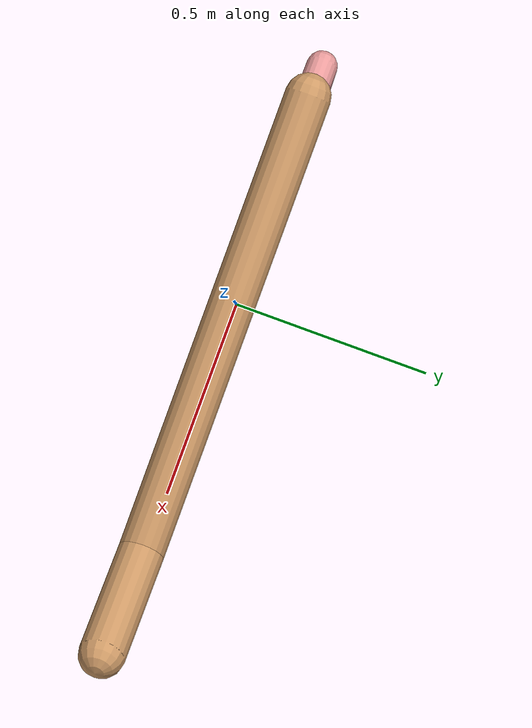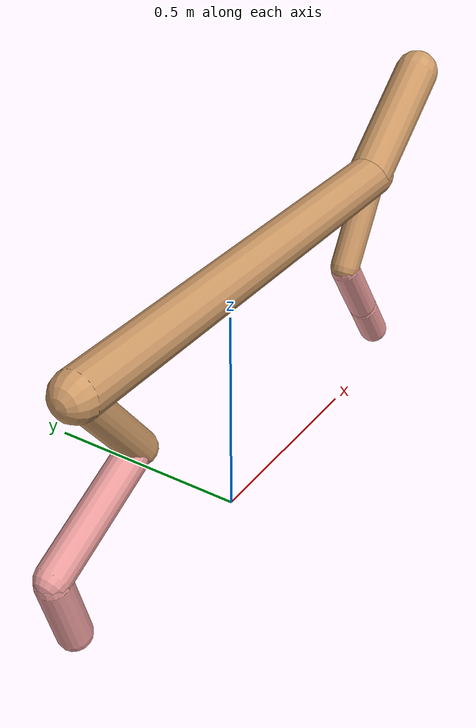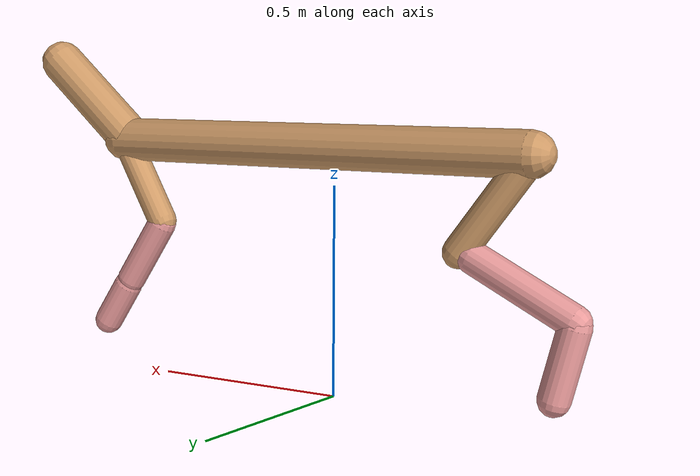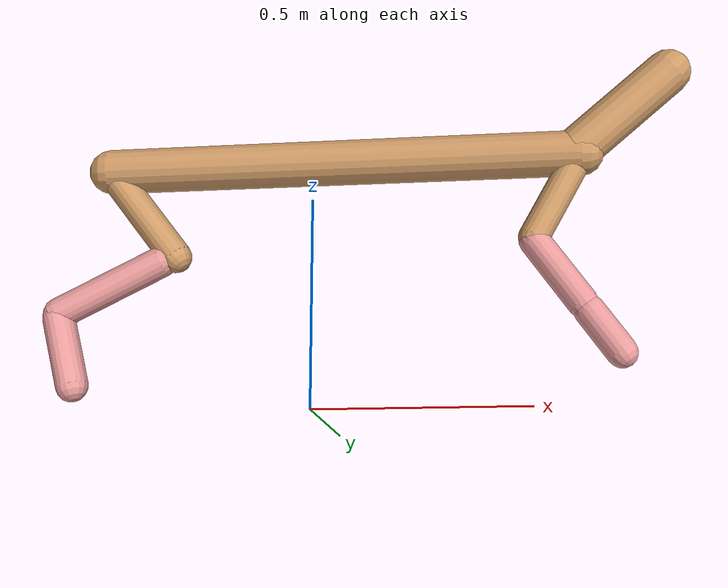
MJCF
<mujoco model="cheetah">
  <compiler angle="radian" coordinate="local" inertiafromgeom="true" settotalmass="14" />
  <default>
    <joint armature=".1" damping=".01" limited="true" solimplimit="0 .8 .03" solreflimit=".02 1" stiffness="8" />
    <geom conaffinity="0" condim="3" contype="1" friction="0.8 .1 .1" rgba="0.8 0.6 .4 1" solimp="0.0 0.8 0.01" solref="0.02 1" />
    <motor ctrllimited="true" ctrlrange="-1 1" />
  </default>
  <size nstack="300000" nuser_geom="1" />
  <option gravity="0 0 -9.81" timestep="0.01" />
  <worldbody>
    <body name="torso" pos="0.0 0.0 0.5914919736380994">
      <joint armature="0" axis="1 0 0" damping="0" limited="false" name="ignorex" pos="0 0 0" stiffness="0" type="slide" />
      <joint armature="0" axis="0 0 1" damping="0" limited="false" name="ignorez" pos="0 0 0" stiffness="0" type="slide" />
      <joint armature="0" axis="0 1 0" damping="0" limited="false" name="ignorey" pos="0 0 0" stiffness="0" type="hinge" />
      <geom fromto="-0.5 0.0 0.0 0.6331415066770196 0.0 0.0" name="torso" size="0.05397808250634162" type="capsule" />
      <geom axisangle="0 1 0 .87" name="head" pos="0.7331415066770196 0.0 0.1" size="0.05395211976459576 0.15" type="capsule" />

      <body name="bthigh" pos="-.5 0 0">
        <joint axis="0 1 0" damping="6" name="bthigh" pos="0 0 0" range="-.52 1.05" stiffness="240" type="hinge" />
        <geom axisangle="0 1 0 -3.8" name="bthigh" pos="0.09187035242359758 0.0 -0.11943145815067684" size="0.03778383051615204 0.13166638659112237" type="capsule" />
        <body name="bshin" pos="0.14374070484719514 0.0 -0.22886291630135366">
          <joint axis="0 1 0" damping="4.5" name="bshin" pos="0 0 0" range="-.785 .785" stiffness="180" type="hinge" />
          <geom axisangle="0 1 0 -2.03" name="bshin" pos="-0.12766281408222632 0.0 -0.06383140704111316" rgba="0.9 0.6 0.6 1" size="0.03778383051615204 0.13620660681840244" type="capsule" />
          <body name="bfoot" pos="-0.25532562816445264 0.0 -0.12766281408222632">
            <joint axis="0 1 0" damping="3" name="bfoot" pos="0 0 0" range="-.4 .785" stiffness="120" type="hinge" />
            <geom axisangle="0 1 0 -.27" name="bfoot" pos="0.02744600116144636 0.0 -0.0887420704220099" rgba="0.9 0.6 0.6 1" size="0.03778383051615204 0.08535614027286553" type="capsule" />
            <inertial mass="10" />
          </body>
        </body>
      </body>
      <body name="fthigh" pos="0.6331415066770196 0.0 0.0">
        <joint axis="0 1 0" damping="4.5" name="fthigh" pos="0 0 0" range="-1.5 0.8" stiffness="180" type="hinge" />
        <geom axisangle="0 1 0 .52" name="fthigh" pos="-0.060657209931251885 0.0 -0.10398378845357464" size="0.035987847018246824 0.11445797318067556" type="capsule" />
        <body name="fshin" pos="-0.12131441986250377 0.0 -0.2079675769071493">
          <joint axis="0 1 0" damping="3" name="fshin" pos="0 0 0" range="-1.2 1.1" stiffness="120" type="hinge" />
          <geom axisangle="0 1 0 -.6" name="fshin" pos="0.056347704928606156 0.0 -0.07801989913191622" rgba="0.9 0.6 0.6 1" size="0.035987847018246824 0.0912221440387339" type="capsule" />
          <body name="ffoot" pos="0.11269540985721231 0.0 -0.15603979826383244">
            <joint axis="0 1 0" damping="1.5" name="ffoot" pos="0 0 0" range="-3.1 -0.3" stiffness="60" type="hinge" />
            <geom axisangle="0 1 0 -.6" name="ffoot" pos="0.039722767494269375 0.0 -0.061790971657752373" rgba="0.9 0.6 0.6 1" size="0.035987847018246824 0.06024103851614503" type="capsule" />
            <inertial mass="10" />
          </body>
        </body>
      </body>
    </body>
  </worldbody>
  <actuator>
    <motor gear="120" joint="bthigh" name="bthigh" />
    <motor gear="90" joint="bshin" name="bshin" />
    <motor gear="60" joint="bfoot" name="bfoot" />
    <motor gear="120" joint="fthigh" name="fthigh" />
    <motor gear="60" joint="fshin" name="fshin" />
    <motor gear="30" joint="ffoot" name="ffoot" />
  </actuator>
</mujoco>
